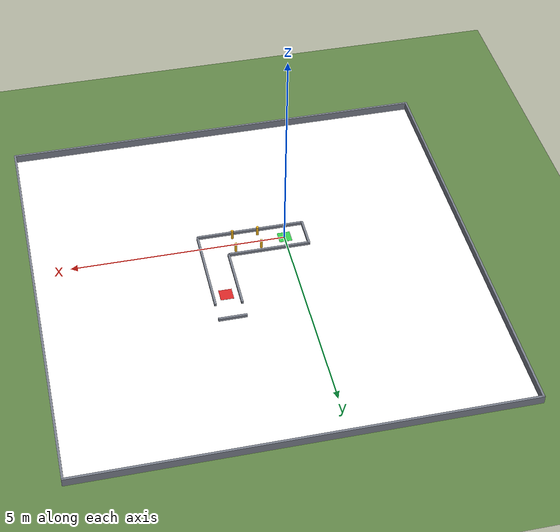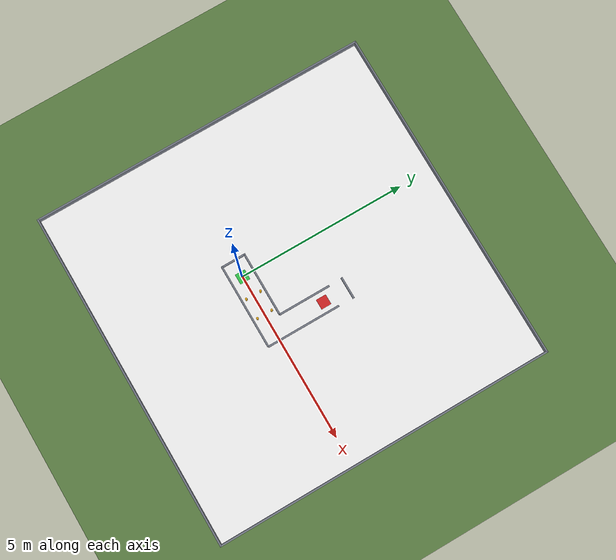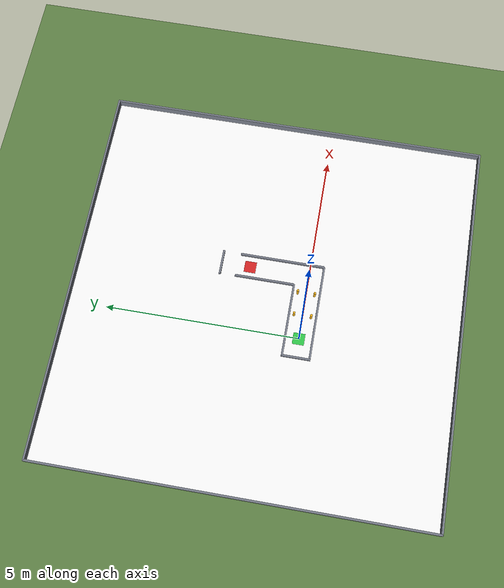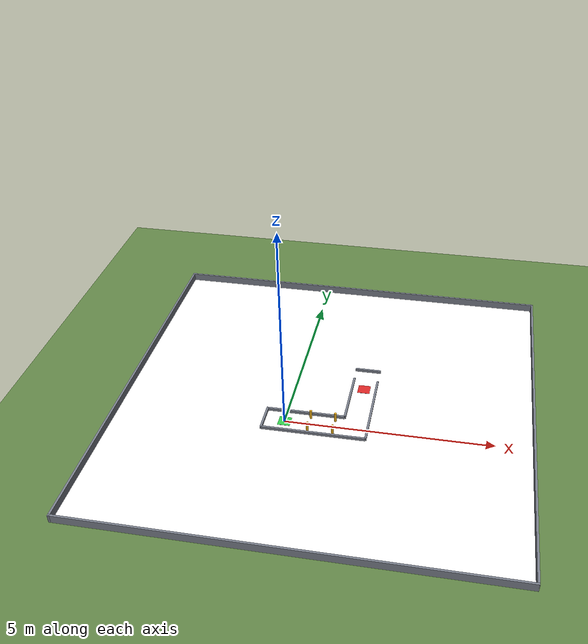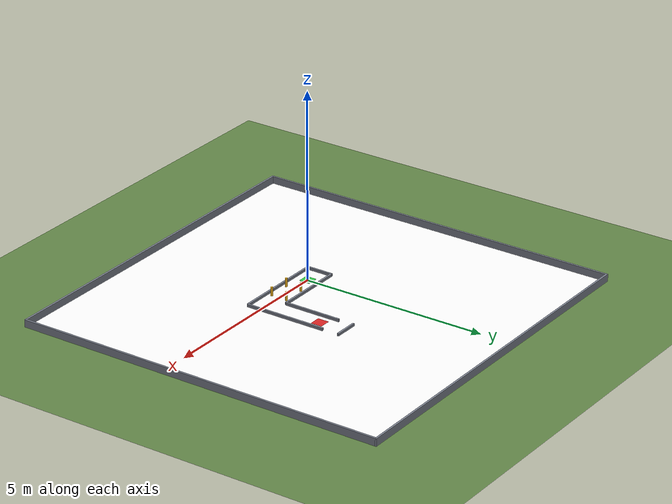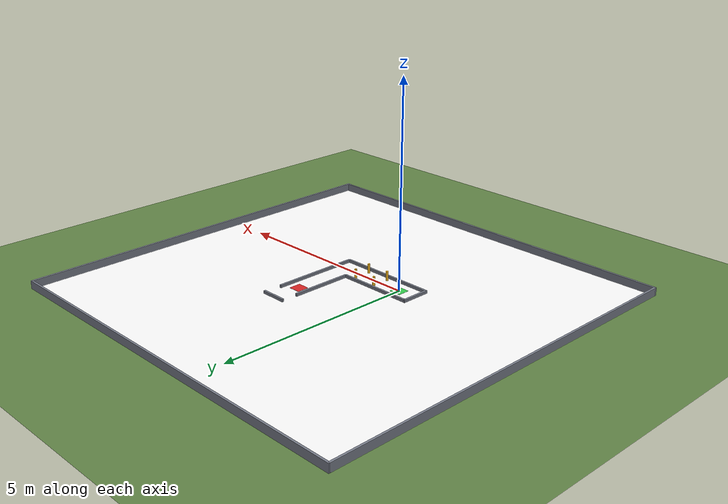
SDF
<?xml version="1.0" ?>
<sdf version="1.11">
  <world name="basics_track">
    <physics name="1ms" type="ignored">
      <max_step_size>0.001</max_step_size>
      <real_time_factor>1.0</real_time_factor>
    </physics>
    <plugin filename="gz-sim-physics-system" name="gz::sim::systems::Physics"/>
    <plugin filename="gz-sim-user-commands-system" name="gz::sim::systems::UserCommands"/>
    <plugin filename="gz-sim-scene-broadcaster-system" name="gz::sim::systems::SceneBroadcaster"/>
    <plugin filename="gz-sim-contact-system" name="gz::sim::systems::Contact"/>

    <gravity>0 0 -9.8</gravity>
    <magnetic_field>6e-06 2.3e-05 -4.2e-05</magnetic_field>
    <atmosphere type="adiabatic"/>

    <light type="directional" name="sun">
      <cast_shadows>true</cast_shadows>
      <pose>0 0 10 0 0 0</pose>
      <diffuse>0.8 0.8 0.8 1</diffuse>
      <specular>0.2 0.2 0.2 1</specular>
      <attenuation>
        <range>1000</range>
        <constant>0.9</constant>
        <linear>0.01</linear>
        <quadratic>0.001</quadratic>
      </attenuation>
      <direction>-0.5 0.1 -0.9</direction>
    </light>

    <model name="ground_plane">
      <static>true</static>
      <link name="link">
        <collision name="collision">
          <geometry>
            <plane>
              <normal>0 0 1</normal>
              <size>100 100</size>
            </plane>
          </geometry>
        </collision>
        <visual name="visual">
          <geometry>
            <plane>
              <normal>0 0 1</normal>
              <size>100 100</size>
            </plane>
          </geometry>
          <material>
            <ambient>0.32 0.48 0.24 1</ambient>
            <diffuse>0.38 0.52 0.28 1</diffuse>
            <specular>0.05 0.05 0.05 1</specular>
          </material>
        </visual>
      </link>
    </model>

    <!-- Straße in der L-Strecke + Kreisbahn um die Mauern (10x10 m, 1:1 zur PNG) -->
    <model name="track_surface">
      <static>true</static>
      <pose>0.875 0.975 0.0005 0 0 0</pose>
      <link name="link">
        <visual name="visual">
          <geometry>
            <plane>
              <normal>0 0 1</normal>
              <size>10 10</size>
            </plane>
          </geometry>
          <material>
            <ambient>1 1 1 1</ambient>
            <diffuse>1 1 1 1</diffuse>
            <specular>0.05 0.05 0.05 1</specular>
            <pbr>
              <metal>
                <albedo_map>model://track_ground/materials/textures/track.png</albedo_map>
                <metalness>0.0</metalness>
                <roughness>0.9</roughness>
              </metal>
            </pbr>
          </material>
        </visual>
      </link>
    </model>

    <!-- Start (grün), Roboter spawnt hier Richtung +x -->
    <model name="start_pad">
      <static>true</static>
      <pose>0 0 0.005 0 0 0</pose>
      <link name="link">
        <visual name="visual">
          <geometry>
            <box>
              <size>0.30 0.30 0.01</size>
            </box>
          </geometry>
          <material>
            <ambient>0.10 0.55 0.18 1</ambient>
            <diffuse>0.20 0.80 0.30 1</diffuse>
          </material>
        </visual>
      </link>
    </model>

    <!-- Ziel (rot) nach 90°-Kurve -->
    <model name="finish_pad">
      <static>true</static>
      <pose>1.70 1.55 0.005 0 0 0</pose>
      <link name="link">
        <visual name="visual">
          <geometry>
            <box>
              <size>0.30 0.30 0.01</size>
            </box>
          </geometry>
          <material>
            <ambient>0.55 0.10 0.10 1</ambient>
            <diffuse>0.85 0.15 0.15 1</diffuse>
          </material>
        </visual>
      </link>
    </model>

    <!-- Hinterwand am Start -->
    <model name="wall_back">
      <static>true</static>
      <pose>-0.5 0 0.0 0 0 0</pose>
      <link name="link">
        <collision name="collision">
          <geometry>
            <box>
              <size>0.05 0.75 0.15</size>
            </box>
          </geometry>
        </collision>
        <visual name="visual">
          <geometry>
            <box>
              <size>0.05 0.75 0.15</size>
            </box>
          </geometry>
          <material>
            <ambient>0.35 0.38 0.42 1</ambient>
            <diffuse>0.48 0.50 0.55 1</diffuse>
          </material>
        </visual>
      </link>
    </model>

    <!-- Rechte Wand der Geraden (y negativ), bis zur Hinterwand bei x=-0.5 -->
    <model name="wall_south">
      <static>true</static>
      <pose>0.75 -0.35 0.0 0 0 0</pose>
      <link name="link">
        <collision name="collision">
          <geometry>
            <box>
              <size>2.50 0.05 0.15</size>
            </box>
          </geometry>
        </collision>
        <visual name="visual">
          <geometry>
            <box>
              <size>2.50 0.05 0.15</size>
            </box>
          </geometry>
          <material>
            <ambient>0.35 0.38 0.42 1</ambient>
            <diffuse>0.48 0.50 0.55 1</diffuse>
          </material>
        </visual>
      </link>
    </model>

    <!-- Linke Wand der Geraden bis zur Kurve, bis zur Hinterwand bei x=-0.5 -->
    <model name="wall_north_approach">
      <static>true</static>
      <pose>0.45 0.35 0.0 0 0 0</pose>
      <link name="link">
        <collision name="collision">
          <geometry>
            <box>
              <size>1.90 0.05 0.15</size>
            </box>
          </geometry>
        </collision>
        <visual name="visual">
          <geometry>
            <box>
              <size>1.90 0.05 0.15</size>
            </box>
          </geometry>
          <material>
            <ambient>0.35 0.38 0.42 1</ambient>
            <diffuse>0.48 0.50 0.55 1</diffuse>
          </material>
        </visual>
      </link>
    </model>

    <!-- Äußere Wand nach der 90°-Kurve (x positiv) -->
    <model name="wall_east">
      <static>true</static>
      <pose>2.00 0.75 0.0 0 0 0</pose>
      <link name="link">
        <collision name="collision">
          <geometry>
            <box>
              <size>0.05 2.20 0.15</size>
            </box>
          </geometry>
        </collision>
        <visual name="visual">
          <geometry>
            <box>
              <size>0.05 2.20 0.15</size>
            </box>
          </geometry>
          <material>
            <ambient>0.35 0.38 0.42 1</ambient>
            <diffuse>0.48 0.50 0.55 1</diffuse>
          </material>
        </visual>
      </link>
    </model>

    <!-- Innere Wand nach der Kurve -->
    <model name="wall_west_exit">
      <static>true</static>
      <pose>1.40 1.125 0.0 0 0 0</pose>
      <link name="link">
        <collision name="collision">
          <geometry>
            <box>
              <size>0.05 1.55 0.15</size>
            </box>
          </geometry>
        </collision>
        <visual name="visual">
          <geometry>
            <box>
              <size>0.05 1.55 0.15</size>
            </box>
          </geometry>
          <material>
            <ambient>0.35 0.38 0.42 1</ambient>
            <diffuse>0.48 0.50 0.55 1</diffuse>
          </material>
        </visual>
      </link>
    </model>

    <!-- Abschlusswand hinter dem Ziel -->
    <model name="wall_end">
      <static>true</static>
      <pose>1.70 2.3 0.0 0 0 0</pose>
      <link name="link">
        <collision name="collision">
          <geometry>
            <box>
              <size>0.65 0.05 0.15</size>
            </box>
          </geometry>
        </collision>
        <visual name="visual">
          <geometry>
            <box>
              <size>0.65 0.05 0.15</size>
            </box>
          </geometry>
          <material>
            <ambient>0.35 0.38 0.42 1</ambient>
            <diffuse>0.48 0.50 0.55 1</diffuse>
          </material>
        </visual>
      </link>
    </model>

    <!-- Außenrahmen Süden -->
    <model name="frame_south">
      <static>true</static>
      <pose>0.875 -4.025 0.10 0 0 0</pose>
      <link name="link">
        <collision name="collision">
          <geometry><box><size>10.05 0.05 0.20</size></box></geometry>
        </collision>
        <visual name="visual">
          <geometry><box><size>10.05 0.05 0.20</size></box></geometry>
          <material>
            <ambient>0.35 0.38 0.42 1</ambient>
            <diffuse>0.48 0.50 0.55 1</diffuse>
          </material>
        </visual>
      </link>
    </model>

    <!-- Außenrahmen Norden -->
    <model name="frame_north">
      <static>true</static>
      <pose>0.875 6.0 0.10 0 0 0</pose>
      <link name="link">
        <collision name="collision">
          <geometry><box><size>10.05 0.05 0.20</size></box></geometry>
        </collision>
        <visual name="visual">
          <geometry><box><size>10.05 0.05 0.20</size></box></geometry>
          <material>
            <ambient>0.35 0.38 0.42 1</ambient>
            <diffuse>0.48 0.50 0.55 1</diffuse>
          </material>
        </visual>
      </link>
    </model>

    <!-- Außenrahmen Ost -->
    <model name="frame_east">
      <static>true</static>
      <pose>5.875 0.975 0.10 0 0 0</pose>
      <link name="link">
        <collision name="collision">
          <geometry><box><size>0.05 10.05 0.20</size></box></geometry>
        </collision>
        <visual name="visual">
          <geometry><box><size>0.05 10.05 0.20</size></box></geometry>
          <material>
            <ambient>0.35 0.38 0.42 1</ambient>
            <diffuse>0.48 0.50 0.55 1</diffuse>
          </material>
        </visual>
      </link>
    </model>

    <!-- Außenrahmen Westen -->
    <model name="frame_west">
      <static>true</static>
      <pose>-4.125 0.975 0.10 0 0 0</pose>
      <link name="link">
        <collision name="collision">
          <geometry><box><size>0.05 10.05 0.20</size></box></geometry>
        </collision>
        <visual name="visual">
          <geometry><box><size>0.05 10.05 0.20</size></box></geometry>
          <material>
            <ambient>0.35 0.38 0.42 1</ambient>
            <diffuse>0.48 0.50 0.55 1</diffuse>
          </material>
        </visual>
      </link>
    </model>

    <!-- Tor 1: Geradeausfahrt -->
    <model name="gate1_left">
      <static>true</static>
      <pose>0.60 0.22 0.12 0 0 0</pose>
      <link name="link">
        <collision name="collision">
          <geometry>
            <cylinder>
              <radius>0.03</radius>
              <length>0.24</length>
            </cylinder>
          </geometry>
        </collision>
        <visual name="visual">
          <geometry>
            <cylinder>
              <radius>0.03</radius>
              <length>0.24</length>
            </cylinder>
          </geometry>
          <material>
            <ambient>0.75 0.55 0.05 1</ambient>
            <diffuse>0.95 0.70 0.10 1</diffuse>
          </material>
        </visual>
      </link>
    </model>
    <model name="gate1_right">
      <static>true</static>
      <pose>0.60 -0.22 0.12 0 0 0</pose>
      <link name="link">
        <collision name="collision">
          <geometry>
            <cylinder>
              <radius>0.03</radius>
              <length>0.24</length>
            </cylinder>
          </geometry>
        </collision>
        <visual name="visual">
          <geometry>
            <cylinder>
              <radius>0.03</radius>
              <length>0.24</length>
            </cylinder>
          </geometry>
          <material>
            <ambient>0.75 0.55 0.05 1</ambient>
            <diffuse>0.95 0.70 0.10 1</diffuse>
          </material>
        </visual>
      </link>
    </model>

    <!-- Tor 2: Geradeausfahrt vor der Kurve -->
    <model name="gate2_left">
      <static>true</static>
      <pose>1.20 0.22 0.12 0 0 0</pose>
      <link name="link">
        <collision name="collision">
          <geometry>
            <cylinder>
              <radius>0.03</radius>
              <length>0.24</length>
            </cylinder>
          </geometry>
        </collision>
        <visual name="visual">
          <geometry>
            <cylinder>
              <radius>0.03</radius>
              <length>0.24</length>
            </cylinder>
          </geometry>
          <material>
            <ambient>0.75 0.55 0.05 1</ambient>
            <diffuse>0.95 0.70 0.10 1</diffuse>
          </material>
        </visual>
      </link>
    </model>
    <model name="gate2_right">
      <static>true</static>
      <pose>1.20 -0.22 0.12 0 0 0</pose>
      <link name="link">
        <collision name="collision">
          <geometry>
            <cylinder>
              <radius>0.03</radius>
              <length>0.24</length>
            </cylinder>
          </geometry>
        </collision>
        <visual name="visual">
          <geometry>
            <cylinder>
              <radius>0.03</radius>
              <length>0.24</length>
            </cylinder>
          </geometry>
          <material>
            <ambient>0.75 0.55 0.05 1</ambient>
            <diffuse>0.95 0.70 0.10 1</diffuse>
          </material>
        </visual>
      </link>
    </model>
  </world>
</sdf>
